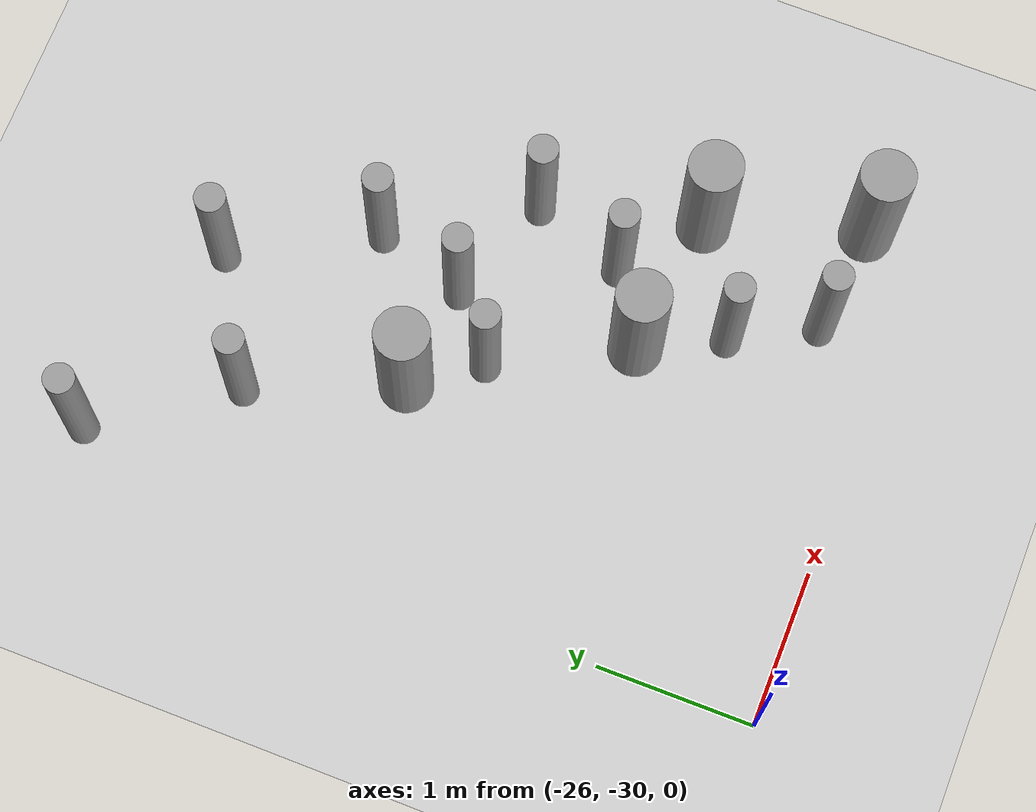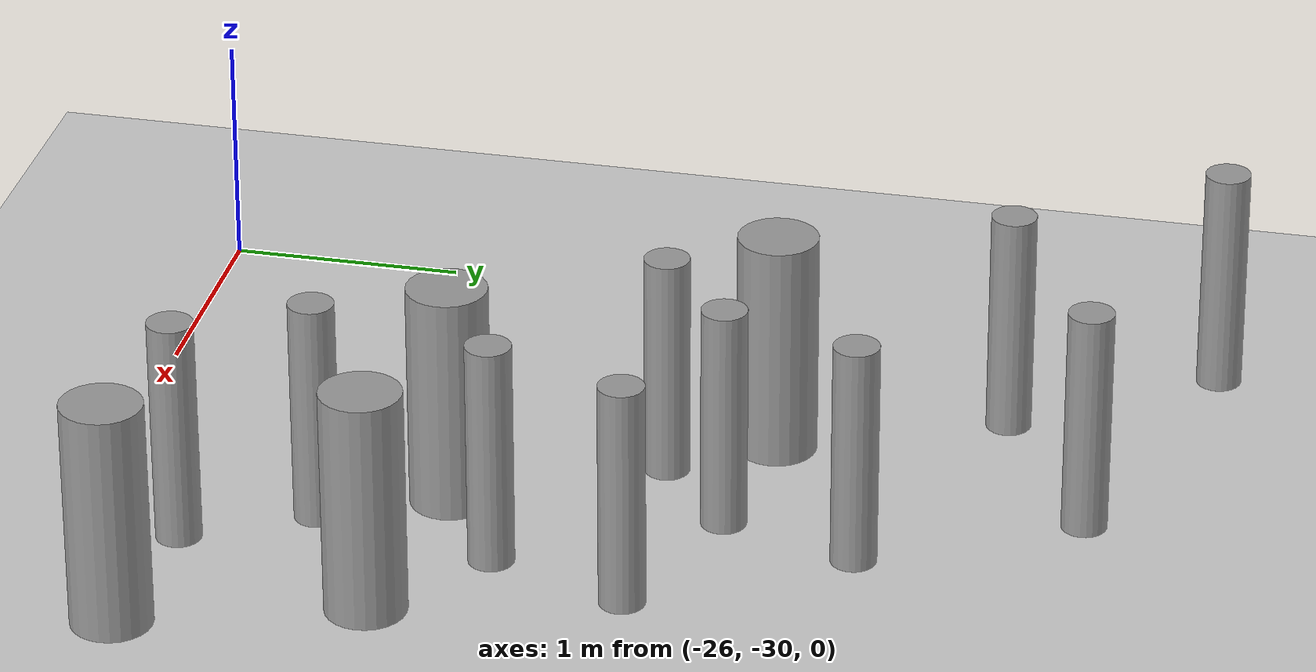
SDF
<sdf version="1.6">
 <world name="default">
  <model name="ground_plane">
   <static>1</static>
   <link name="link">
    <collision name="collision">
     <geometry><plane><normal>0 0 1</normal><size>100 100</size></plane></geometry>
     <surface><friction><ode><mu>100</mu><mu2>50</mu2></ode></friction></surface>
    </collision>
    <visual name="visual">
     <cast_shadows>0</cast_shadows>
     <geometry><plane><normal>0 0 1</normal><size>100 100</size></plane></geometry>
     <material>
      <script><uri>file://media/materials/scripts/gazebo.material</uri><name>Gazebo/Grey</name></script>
     </material>
    </visual>
   </link>
  </model>
  <model name="cyl_wall_clone_clone_1_clone_1_clone_clone_4_clone">
   <link name="link_0">
    <pose>-2.73893 -0.366465 0 0 -0 0</pose>
    <inertial>
     <mass>0.0374993</mass>
     <inertia>
      <ixx>0.00321281</ixx>
      <ixy>0</ixy>
      <ixz>0</ixz>
      <iyy>0.00321281</iyy>
      <iyz>0</iyz>
      <izz>0.000175774</izz>
     </inertia>
    </inertial>
    <visual name="visual">
     <geometry><cylinder><radius>0.0968661</radius><length>1</length></cylinder></geometry>
     <material>
      <lighting>1</lighting>
      <script><uri>file://media/materials/scripts/gazebo.material</uri><name>Gazebo/Grey</name></script>
      <ambient>0.3 0.3 0.3 1</ambient>
      <diffuse>0.7 0.7 0.7 1</diffuse>
      <specular>0.01 0.01 0.01 1</specular>
      <emissive>0 0 0 1</emissive>
     </material>
    </visual>
    <collision name="collision">
     <geometry><cylinder><radius>0.096866</radius><length>1</length></cylinder></geometry>
     <surface>
      <friction>
       <ode><mu>1</mu><mu2>1</mu2><fdir1>0 0 0</fdir1><slip1>0</slip1><slip2>0</slip2></ode>
       <torsional>
        <coefficient>1</coefficient>
        <patch_radius>0</patch_radius>
        <surface_radius>0</surface_radius>
        <use_patch_radius>1</use_patch_radius>
        <ode><slip>0</slip></ode>
       </torsional>
      </friction>
      <bounce><restitution_coefficient>0</restitution_coefficient><threshold>1e+06</threshold></bounce>
      <contact>
       <collide_without_contact>0</collide_without_contact>
       <collide_without_contact_bitmask>1</collide_without_contact_bitmask>
       <collide_bitmask>1</collide_bitmask>
       <ode>
        <soft_cfm>0</soft_cfm>
        <soft_erp>0.2</soft_erp>
        <kp>1e+13</kp>
        <kd>1</kd>
        <max_vel>0.01</max_vel>
        <min_depth>0</min_depth>
       </ode>
       <bullet>
        <split_impulse>1</split_impulse>
        <split_impulse_penetration_threshold>-0.01</split_impulse_penetration_threshold>
        <soft_cfm>0</soft_cfm>
        <soft_erp>0.2</soft_erp>
        <kp>1e+13</kp>
        <kd>1</kd>
       </bullet>
      </contact>
     </surface>
    </collision>
   </link>
   <link name="link_0_clone">
    <pose>-1.73893 0.61877 0 0 -0 0</pose>
    <inertial>
     <mass>0.0374993</mass>
     <inertia>
      <ixx>0.00321281</ixx>
      <ixy>0</ixy>
      <ixz>0</ixz>
      <iyy>0.00321281</iyy>
      <iyz>0</iyz>
      <izz>0.000175774</izz>
     </inertia>
    </inertial>
    <visual name="visual">
     <geometry><cylinder><radius>0.0968661</radius><length>1</length></cylinder></geometry>
     <material>
      <lighting>1</lighting>
      <script><uri>file://media/materials/scripts/gazebo.material</uri><name>Gazebo/Grey</name></script>
      <ambient>0.3 0.3 0.3 1</ambient>
      <diffuse>0.7 0.7 0.7 1</diffuse>
      <specular>0.01 0.01 0.01 1</specular>
      <emissive>0 0 0 1</emissive>
      <shader type="pixel"/>
     </material>
    </visual>
    <collision name="collision">
     <geometry><cylinder><radius>0.096866</radius><length>1</length></cylinder></geometry>
     <surface>
      <friction>
       <ode><mu>1</mu><mu2>1</mu2><fdir1>0 0 0</fdir1><slip1>0</slip1><slip2>0</slip2></ode>
       <torsional>
        <coefficient>1</coefficient>
        <patch_radius>0</patch_radius>
        <surface_radius>0</surface_radius>
        <use_patch_radius>1</use_patch_radius>
        <ode><slip>0</slip></ode>
       </torsional>
      </friction>
      <bounce><restitution_coefficient>0</restitution_coefficient><threshold>1e+06</threshold></bounce>
      <contact>
       <collide_without_contact>0</collide_without_contact>
       <collide_without_contact_bitmask>1</collide_without_contact_bitmask>
       <collide_bitmask>1</collide_bitmask>
       <ode>
        <soft_cfm>0</soft_cfm>
        <soft_erp>0.2</soft_erp>
        <kp>1e+13</kp>
        <kd>1</kd>
        <max_vel>0.01</max_vel>
        <min_depth>0</min_depth>
       </ode>
       <bullet>
        <split_impulse>1</split_impulse>
        <split_impulse_penetration_threshold>-0.01</split_impulse_penetration_threshold>
        <soft_cfm>0</soft_cfm>
        <soft_erp>0.2</soft_erp>
        <kp>1e+13</kp>
        <kd>1</kd>
       </bullet>
      </contact>
     </surface>
    </collision>
   </link>
   <link name="link_0_clone_clone">
    <pose>-0.327073 0.143919 0 0 -0 0</pose>
    <inertial>
     <mass>0.0374993</mass>
     <inertia>
      <ixx>0.00321281</ixx>
      <ixy>0</ixy>
      <ixz>0</ixz>
      <iyy>0.00321281</iyy>
      <iyz>0</iyz>
      <izz>0.000175774</izz>
     </inertia>
    </inertial>
    <visual name="visual">
     <geometry><cylinder><radius>0.0968661</radius><length>1</length></cylinder></geometry>
     <material>
      <lighting>1</lighting>
      <script><uri>file://media/materials/scripts/gazebo.material</uri><name>Gazebo/Grey</name></script>
      <ambient>0.3 0.3 0.3 1</ambient>
      <diffuse>0.7 0.7 0.7 1</diffuse>
      <specular>0.01 0.01 0.01 1</specular>
      <emissive>0 0 0 1</emissive>
      <shader type="pixel"/>
     </material>
    </visual>
    <collision name="collision">
     <geometry><cylinder><radius>0.096866</radius><length>1</length></cylinder></geometry>
     <surface>
      <friction>
       <ode><mu>1</mu><mu2>1</mu2><fdir1>0 0 0</fdir1><slip1>0</slip1><slip2>0</slip2></ode>
       <torsional>
        <coefficient>1</coefficient>
        <patch_radius>0</patch_radius>
        <surface_radius>0</surface_radius>
        <use_patch_radius>1</use_patch_radius>
        <ode><slip>0</slip></ode>
       </torsional>
      </friction>
      <bounce><restitution_coefficient>0</restitution_coefficient><threshold>1e+06</threshold></bounce>
      <contact>
       <collide_without_contact>0</collide_without_contact>
       <collide_without_contact_bitmask>1</collide_without_contact_bitmask>
       <collide_bitmask>1</collide_bitmask>
       <ode>
        <soft_cfm>0</soft_cfm>
        <soft_erp>0.2</soft_erp>
        <kp>1e+13</kp>
        <kd>1</kd>
        <max_vel>0.01</max_vel>
        <min_depth>0</min_depth>
       </ode>
       <bullet>
        <split_impulse>1</split_impulse>
        <split_impulse_penetration_threshold>-0.01</split_impulse_penetration_threshold>
        <soft_cfm>0</soft_cfm>
        <soft_erp>0.2</soft_erp>
        <kp>1e+13</kp>
        <kd>1</kd>
       </bullet>
      </contact>
     </surface>
    </collision>
   </link>
   <link name="link_0_clone_clone_0">
    <pose>1.26107 -0.419359 0 0 -0 0</pose>
    <inertial>
     <mass>0.0374993</mass>
     <inertia>
      <ixx>0.00321281</ixx>
      <ixy>0</ixy>
      <ixz>0</ixz>
      <iyy>0.00321281</iyy>
      <iyz>0</iyz>
      <izz>0.000175774</izz>
     </inertia>
    </inertial>
    <visual name="visual">
     <geometry><cylinder><radius>0.0968661</radius><length>1</length></cylinder></geometry>
     <material>
      <lighting>1</lighting>
      <script><uri>file://media/materials/scripts/gazebo.material</uri><name>Gazebo/Grey</name></script>
      <ambient>0.3 0.3 0.3 1</ambient>
      <diffuse>0.7 0.7 0.7 1</diffuse>
      <specular>0.01 0.01 0.01 1</specular>
      <emissive>0 0 0 1</emissive>
      <shader type="pixel"/>
     </material>
    </visual>
    <collision name="collision">
     <geometry><cylinder><radius>0.096866</radius><length>1</length></cylinder></geometry>
     <surface>
      <friction>
       <ode><mu>1</mu><mu2>1</mu2><fdir1>0 0 0</fdir1><slip1>0</slip1><slip2>0</slip2></ode>
       <torsional>
        <coefficient>1</coefficient>
        <patch_radius>0</patch_radius>
        <surface_radius>0</surface_radius>
        <use_patch_radius>1</use_patch_radius>
        <ode><slip>0</slip></ode>
       </torsional>
      </friction>
      <bounce><restitution_coefficient>0</restitution_coefficient><threshold>1e+06</threshold></bounce>
      <contact>
       <collide_without_contact>0</collide_without_contact>
       <collide_without_contact_bitmask>1</collide_without_contact_bitmask>
       <collide_bitmask>1</collide_bitmask>
       <ode>
        <soft_cfm>0</soft_cfm>
        <soft_erp>0.2</soft_erp>
        <kp>1e+13</kp>
        <kd>1</kd>
        <max_vel>0.01</max_vel>
        <min_depth>0</min_depth>
       </ode>
       <bullet>
        <split_impulse>1</split_impulse>
        <split_impulse_penetration_threshold>-0.01</split_impulse_penetration_threshold>
        <soft_cfm>0</soft_cfm>
        <soft_erp>0.2</soft_erp>
        <kp>1e+13</kp>
        <kd>1</kd>
       </bullet>
      </contact>
     </surface>
    </collision>
   </link>
   <link name="link_0_clone_clone_1">
    <pose>-1.73893 -0.277168 0 0 -0 0</pose>
    <inertial>
     <mass>0.0374993</mass>
     <inertia>
      <ixx>0.00321281</ixx>
      <ixy>0</ixy>
      <ixz>0</ixz>
      <iyy>0.00321281</iyy>
      <iyz>0</iyz>
      <izz>0.000175774</izz>
     </inertia>
    </inertial>
    <visual name="visual">
     <geometry><cylinder><radius>0.0968661</radius><length>1</length></cylinder></geometry>
     <material>
      <lighting>1</lighting>
      <script><uri>file://media/materials/scripts/gazebo.material</uri><name>Gazebo/Grey</name></script>
      <ambient>0.3 0.3 0.3 1</ambient>
      <diffuse>0.7 0.7 0.7 1</diffuse>
      <specular>0.01 0.01 0.01 1</specular>
      <emissive>0 0 0 1</emissive>
      <shader type="pixel"/>
     </material>
    </visual>
    <collision name="collision">
     <geometry><cylinder><radius>0.096866</radius><length>1</length></cylinder></geometry>
     <surface>
      <friction>
       <ode><mu>1</mu><mu2>1</mu2><fdir1>0 0 0</fdir1><slip1>0</slip1><slip2>0</slip2></ode>
       <torsional>
        <coefficient>1</coefficient>
        <patch_radius>0</patch_radius>
        <surface_radius>0</surface_radius>
        <use_patch_radius>1</use_patch_radius>
        <ode><slip>0</slip></ode>
       </torsional>
      </friction>
      <bounce><restitution_coefficient>0</restitution_coefficient><threshold>1e+06</threshold></bounce>
      <contact>
       <collide_without_contact>0</collide_without_contact>
       <collide_without_contact_bitmask>1</collide_without_contact_bitmask>
       <collide_bitmask>1</collide_bitmask>
       <ode>
        <soft_cfm>0</soft_cfm>
        <soft_erp>0.2</soft_erp>
        <kp>1e+13</kp>
        <kd>1</kd>
        <max_vel>0.01</max_vel>
        <min_depth>0</min_depth>
       </ode>
       <bullet>
        <split_impulse>1</split_impulse>
        <split_impulse_penetration_threshold>-0.01</split_impulse_penetration_threshold>
        <soft_cfm>0</soft_cfm>
        <soft_erp>0.2</soft_erp>
        <kp>1e+13</kp>
        <kd>1</kd>
       </bullet>
      </contact>
     </surface>
    </collision>
   </link>
   <link name="link_0_clone_clone_2">
    <pose>-0.738934 0.593961 0 0 -0 0</pose>
    <inertial>
     <mass>0.0374993</mass>
     <inertia>
      <ixx>0.00321281</ixx>
      <ixy>0</ixy>
      <ixz>0</ixz>
      <iyy>0.00321281</iyy>
      <iyz>0</iyz>
      <izz>0.000175774</izz>
     </inertia>
    </inertial>
    <visual name="visual">
     <geometry><cylinder><radius>0.0968661</radius><length>1</length></cylinder></geometry>
     <material>
      <lighting>1</lighting>
      <script><uri>file://media/materials/scripts/gazebo.material</uri><name>Gazebo/Grey</name></script>
      <ambient>0.3 0.3 0.3 1</ambient>
      <diffuse>0.7 0.7 0.7 1</diffuse>
      <specular>0.01 0.01 0.01 1</specular>
      <emissive>0 0 0 1</emissive>
      <shader type="pixel"/>
     </material>
    </visual>
    <collision name="collision">
     <geometry><cylinder><radius>0.096866</radius><length>1</length></cylinder></geometry>
     <surface>
      <friction>
       <ode><mu>1</mu><mu2>1</mu2><fdir1>0 0 0</fdir1><slip1>0</slip1><slip2>0</slip2></ode>
       <torsional>
        <coefficient>1</coefficient>
        <patch_radius>0</patch_radius>
        <surface_radius>0</surface_radius>
        <use_patch_radius>1</use_patch_radius>
        <ode><slip>0</slip></ode>
       </torsional>
      </friction>
      <bounce><restitution_coefficient>0</restitution_coefficient><threshold>1e+06</threshold></bounce>
      <contact>
       <collide_without_contact>0</collide_without_contact>
       <collide_without_contact_bitmask>1</collide_without_contact_bitmask>
       <collide_bitmask>1</collide_bitmask>
       <ode>
        <soft_cfm>0</soft_cfm>
        <soft_erp>0.2</soft_erp>
        <kp>1e+13</kp>
        <kd>1</kd>
        <max_vel>0.01</max_vel>
        <min_depth>0</min_depth>
       </ode>
       <bullet>
        <split_impulse>1</split_impulse>
        <split_impulse_penetration_threshold>-0.01</split_impulse_penetration_threshold>
        <soft_cfm>0</soft_cfm>
        <soft_erp>0.2</soft_erp>
        <kp>1e+13</kp>
        <kd>1</kd>
       </bullet>
      </contact>
     </surface>
    </collision>
   </link>
   <link name="link_0_clone_clone_3">
    <pose>0.261066 0.624849 0 0 -0 0</pose>
    <inertial>
     <mass>0.0374993</mass>
     <inertia>
      <ixx>0.00321281</ixx>
      <ixy>0</ixy>
      <ixz>0</ixz>
      <iyy>0.00321281</iyy>
      <iyz>0</iyz>
      <izz>0.000175774</izz>
     </inertia>
    </inertial>
    <visual name="visual">
     <geometry><cylinder><radius>0.0968661</radius><length>1</length></cylinder></geometry>
     <material>
      <lighting>1</lighting>
      <script><uri>file://media/materials/scripts/gazebo.material</uri><name>Gazebo/Grey</name></script>
      <ambient>0.3 0.3 0.3 1</ambient>
      <diffuse>0.7 0.7 0.7 1</diffuse>
      <specular>0.01 0.01 0.01 1</specular>
      <emissive>0 0 0 1</emissive>
      <shader type="pixel"/>
     </material>
    </visual>
    <collision name="collision">
     <geometry><cylinder><radius>0.096866</radius><length>1</length></cylinder></geometry>
     <surface>
      <friction>
       <ode><mu>1</mu><mu2>1</mu2><fdir1>0 0 0</fdir1><slip1>0</slip1><slip2>0</slip2></ode>
       <torsional>
        <coefficient>1</coefficient>
        <patch_radius>0</patch_radius>
        <surface_radius>0</surface_radius>
        <use_patch_radius>1</use_patch_radius>
        <ode><slip>0</slip></ode>
       </torsional>
      </friction>
      <bounce><restitution_coefficient>0</restitution_coefficient><threshold>1e+06</threshold></bounce>
      <contact>
       <collide_without_contact>0</collide_without_contact>
       <collide_without_contact_bitmask>1</collide_without_contact_bitmask>
       <collide_bitmask>1</collide_bitmask>
       <ode>
        <soft_cfm>0</soft_cfm>
        <soft_erp>0.2</soft_erp>
        <kp>1e+13</kp>
        <kd>1</kd>
        <max_vel>0.01</max_vel>
        <min_depth>0</min_depth>
       </ode>
       <bullet>
        <split_impulse>1</split_impulse>
        <split_impulse_penetration_threshold>-0.01</split_impulse_penetration_threshold>
        <soft_cfm>0</soft_cfm>
        <soft_erp>0.2</soft_erp>
        <kp>1e+13</kp>
        <kd>1</kd>
       </bullet>
      </contact>
     </surface>
    </collision>
   </link>
   <link name="link_0_clone_clone_4">
    <pose>-0.239049 -0.353105 0 0 -0 0</pose>
    <inertial>
     <mass>0.0374993</mass>
     <inertia>
      <ixx>0.00321281</ixx>
      <ixy>0</ixy>
      <ixz>0</ixz>
      <iyy>0.00321281</iyy>
      <iyz>0</iyz>
      <izz>0.000175774</izz>
     </inertia>
    </inertial>
    <visual name="visual">
     <geometry><cylinder><radius>0.0968661</radius><length>1</length></cylinder></geometry>
     <material>
      <lighting>1</lighting>
      <script><uri>file://media/materials/scripts/gazebo.material</uri><name>Gazebo/Grey</name></script>
      <ambient>0.3 0.3 0.3 1</ambient>
      <diffuse>0.7 0.7 0.7 1</diffuse>
      <specular>0.01 0.01 0.01 1</specular>
      <emissive>0 0 0 1</emissive>
      <shader type="pixel"/>
     </material>
    </visual>
    <collision name="collision">
     <geometry><cylinder><radius>0.096866</radius><length>1</length></cylinder></geometry>
     <surface>
      <friction>
       <ode><mu>1</mu><mu2>1</mu2><fdir1>0 0 0</fdir1><slip1>0</slip1><slip2>0</slip2></ode>
       <torsional>
        <coefficient>1</coefficient>
        <patch_radius>0</patch_radius>
        <surface_radius>0</surface_radius>
        <use_patch_radius>1</use_patch_radius>
        <ode><slip>0</slip></ode>
       </torsional>
      </friction>
      <bounce><restitution_coefficient>0</restitution_coefficient><threshold>1e+06</threshold></bounce>
      <contact>
       <collide_without_contact>0</collide_without_contact>
       <collide_without_contact_bitmask>1</collide_without_contact_bitmask>
       <collide_bitmask>1</collide_bitmask>
       <ode>
        <soft_cfm>0</soft_cfm>
        <soft_erp>0.2</soft_erp>
        <kp>1e+13</kp>
        <kd>1</kd>
        <max_vel>0.01</max_vel>
        <min_depth>0</min_depth>
       </ode>
       <bullet>
        <split_impulse>1</split_impulse>
        <split_impulse_penetration_threshold>-0.01</split_impulse_penetration_threshold>
        <soft_cfm>0</soft_cfm>
        <soft_erp>0.2</soft_erp>
        <kp>1e+13</kp>
        <kd>1</kd>
       </bullet>
      </contact>
     </surface>
    </collision>
   </link>
   <link name="link_0_clone_clone_5">
    <pose>0.672792 0.143919 0 0 -0 0</pose>
    <inertial>
     <mass>0.0374993</mass>
     <inertia>
      <ixx>0.00321281</ixx>
      <ixy>0</ixy>
      <ixz>0</ixz>
      <iyy>0.00321281</iyy>
      <iyz>0</iyz>
      <izz>0.000175774</izz>
     </inertia>
    </inertial>
    <visual name="visual">
     <geometry><cylinder><radius>0.0968661</radius><length>1</length></cylinder></geometry>
     <material>
      <lighting>1</lighting>
      <script><uri>file://media/materials/scripts/gazebo.material</uri><name>Gazebo/Grey</name></script>
      <ambient>0.3 0.3 0.3 1</ambient>
      <diffuse>0.7 0.7 0.7 1</diffuse>
      <specular>0.01 0.01 0.01 1</specular>
      <emissive>0 0 0 1</emissive>
      <shader type="pixel"/>
     </material>
    </visual>
    <collision name="collision">
     <geometry><cylinder><radius>0.096866</radius><length>1</length></cylinder></geometry>
     <surface>
      <friction>
       <ode><mu>1</mu><mu2>1</mu2><fdir1>0 0 0</fdir1><slip1>0</slip1><slip2>0</slip2></ode>
       <torsional>
        <coefficient>1</coefficient>
        <patch_radius>0</patch_radius>
        <surface_radius>0</surface_radius>
        <use_patch_radius>1</use_patch_radius>
        <ode><slip>0</slip></ode>
       </torsional>
      </friction>
      <bounce><restitution_coefficient>0</restitution_coefficient><threshold>1e+06</threshold></bounce>
      <contact>
       <collide_without_contact>0</collide_without_contact>
       <collide_without_contact_bitmask>1</collide_without_contact_bitmask>
       <collide_bitmask>1</collide_bitmask>
       <ode>
        <soft_cfm>0</soft_cfm>
        <soft_erp>0.2</soft_erp>
        <kp>1e+13</kp>
        <kd>1</kd>
        <max_vel>0.01</max_vel>
        <min_depth>0</min_depth>
       </ode>
       <bullet>
        <split_impulse>1</split_impulse>
        <split_impulse_penetration_threshold>-0.01</split_impulse_penetration_threshold>
        <soft_cfm>0</soft_cfm>
        <soft_erp>0.2</soft_erp>
        <kp>1e+13</kp>
        <kd>1</kd>
       </bullet>
      </contact>
     </surface>
    </collision>
   </link>
   <link name="link_0_clone_clone_6">
    <pose>1.84596 -0.433423 0 0 -0 0</pose>
    <inertial>
     <mass>0.0374993</mass>
     <inertia>
      <ixx>0.00321281</ixx>
      <ixy>0</ixy>
      <ixz>0</ixz>
      <iyy>0.00321281</iyy>
      <iyz>0</iyz>
      <izz>0.000175774</izz>
     </inertia>
    </inertial>
    <visual name="visual">
     <geometry><cylinder><radius>0.0968661</radius><length>1</length></cylinder></geometry>
     <material>
      <lighting>1</lighting>
      <script><uri>file://media/materials/scripts/gazebo.material</uri><name>Gazebo/Grey</name></script>
      <ambient>0.3 0.3 0.3 1</ambient>
      <diffuse>0.7 0.7 0.7 1</diffuse>
      <specular>0.01 0.01 0.01 1</specular>
      <emissive>0 0 0 1</emissive>
      <shader type="pixel"/>
     </material>
    </visual>
    <collision name="collision">
     <geometry><cylinder><radius>0.096866</radius><length>1</length></cylinder></geometry>
     <surface>
      <friction>
       <ode><mu>1</mu><mu2>1</mu2><fdir1>0 0 0</fdir1><slip1>0</slip1><slip2>0</slip2></ode>
       <torsional>
        <coefficient>1</coefficient>
        <patch_radius>0</patch_radius>
        <surface_radius>0</surface_radius>
        <use_patch_radius>1</use_patch_radius>
        <ode><slip>0</slip></ode>
       </torsional>
      </friction>
      <bounce><restitution_coefficient>0</restitution_coefficient><threshold>1e+06</threshold></bounce>
      <contact>
       <collide_without_contact>0</collide_without_contact>
       <collide_without_contact_bitmask>1</collide_without_contact_bitmask>
       <collide_bitmask>1</collide_bitmask>
       <ode>
        <soft_cfm>0</soft_cfm>
        <soft_erp>0.2</soft_erp>
        <kp>1e+13</kp>
        <kd>1</kd>
        <max_vel>0.01</max_vel>
        <min_depth>0</min_depth>
       </ode>
       <bullet>
        <split_impulse>1</split_impulse>
        <split_impulse_penetration_threshold>-0.01</split_impulse_penetration_threshold>
        <soft_cfm>0</soft_cfm>
        <soft_erp>0.2</soft_erp>
        <kp>1e+13</kp>
        <kd>1</kd>
       </bullet>
      </contact>
     </surface>
    </collision>
   </link>
   <link name="link_1">
    <pose>-0.738934 -0.397931 0 0 -0 0</pose>
    <inertial>
     <mass>0.117398</mass>
     <inertia>
      <ixx>0.0106445</ixx>
      <ixy>0</ixy>
      <ixz>0</ixz>
      <iyy>0.0106445</iyy>
      <iyz>0</iyz>
      <izz>0.00172278</izz>
     </inertia>
    </inertial>
    <visual name="visual">
     <geometry><cylinder><radius>0.171317</radius><length>1</length></cylinder></geometry>
     <material>
      <lighting>1</lighting>
      <script><uri>file://media/materials/scripts/gazebo.material</uri><name>Gazebo/Grey</name></script>
      <ambient>0.3 0.3 0.3 1</ambient>
      <diffuse>0.7 0.7 0.7 1</diffuse>
      <specular>0.01 0.01 0.01 1</specular>
      <emissive>0 0 0 1</emissive>
     </material>
    </visual>
    <collision name="collision">
     <geometry><cylinder><radius>0.171317</radius><length>1</length></cylinder></geometry>
     <surface>
      <friction>
       <ode><mu>1</mu><mu2>1</mu2><fdir1>0 0 0</fdir1><slip1>0</slip1><slip2>0</slip2></ode>
       <torsional>
        <coefficient>1</coefficient>
        <patch_radius>0</patch_radius>
        <surface_radius>0</surface_radius>
        <use_patch_radius>1</use_patch_radius>
        <ode><slip>0</slip></ode>
       </torsional>
      </friction>
      <bounce><restitution_coefficient>0</restitution_coefficient><threshold>1e+06</threshold></bounce>
      <contact>
       <collide_without_contact>0</collide_without_contact>
       <collide_without_contact_bitmask>1</collide_without_contact_bitmask>
       <collide_bitmask>1</collide_bitmask>
       <ode>
        <soft_cfm>0</soft_cfm>
        <soft_erp>0.2</soft_erp>
        <kp>1e+13</kp>
        <kd>1</kd>
        <max_vel>0.01</max_vel>
        <min_depth>0</min_depth>
       </ode>
       <bullet>
        <split_impulse>1</split_impulse>
        <split_impulse_penetration_threshold>-0.01</split_impulse_penetration_threshold>
        <soft_cfm>0</soft_cfm>
        <soft_erp>0.2</soft_erp>
        <kp>1e+13</kp>
        <kd>1</kd>
       </bullet>
      </contact>
     </surface>
    </collision>
   </link>
   <link name="link_1_clone">
    <pose>0.697784 -0.380861 0 0 -0 0</pose>
    <inertial>
     <mass>0.117398</mass>
     <inertia>
      <ixx>0.0106445</ixx>
      <ixy>0</ixy>
      <ixz>0</ixz>
      <iyy>0.0106445</iyy>
      <iyz>0</iyz>
      <izz>0.00172278</izz>
     </inertia>
    </inertial>
    <visual name="visual">
     <geometry><cylinder><radius>0.171317</radius><length>1</length></cylinder></geometry>
     <material>
      <lighting>1</lighting>
      <script><uri>file://media/materials/scripts/gazebo.material</uri><name>Gazebo/Grey</name></script>
      <ambient>0.3 0.3 0.3 1</ambient>
      <diffuse>0.7 0.7 0.7 1</diffuse>
      <specular>0.01 0.01 0.01 1</specular>
      <emissive>0 0 0 1</emissive>
      <shader type="pixel"/>
     </material>
    </visual>
    <collision name="collision">
     <geometry><cylinder><radius>0.171317</radius><length>1</length></cylinder></geometry>
     <surface>
      <friction>
       <ode><mu>1</mu><mu2>1</mu2><fdir1>0 0 0</fdir1><slip1>0</slip1><slip2>0</slip2></ode>
       <torsional>
        <coefficient>1</coefficient>
        <patch_radius>0</patch_radius>
        <surface_radius>0</surface_radius>
        <use_patch_radius>1</use_patch_radius>
        <ode><slip>0</slip></ode>
       </torsional>
      </friction>
      <bounce><restitution_coefficient>0</restitution_coefficient><threshold>1e+06</threshold></bounce>
      <contact>
       <collide_without_contact>0</collide_without_contact>
       <collide_without_contact_bitmask>1</collide_without_contact_bitmask>
       <collide_bitmask>1</collide_bitmask>
       <ode>
        <soft_cfm>0</soft_cfm>
        <soft_erp>0.2</soft_erp>
        <kp>1e+13</kp>
        <kd>1</kd>
        <max_vel>0.01</max_vel>
        <min_depth>0</min_depth>
       </ode>
       <bullet>
        <split_impulse>1</split_impulse>
        <split_impulse_penetration_threshold>-0.01</split_impulse_penetration_threshold>
        <soft_cfm>0</soft_cfm>
        <soft_erp>0.2</soft_erp>
        <kp>1e+13</kp>
        <kd>1</kd>
       </bullet>
      </contact>
     </surface>
    </collision>
   </link>
   <link name="link_1_clone_0">
    <pose>1.26107 0.358974 0 0 -0 0</pose>
    <inertial>
     <mass>0.117398</mass>
     <inertia>
      <ixx>0.0106445</ixx>
      <ixy>0</ixy>
      <ixz>0</ixz>
      <iyy>0.0106445</iyy>
      <iyz>0</iyz>
      <izz>0.00172278</izz>
     </inertia>
    </inertial>
    <visual name="visual">
     <geometry><cylinder><radius>0.171317</radius><length>1</length></cylinder></geometry>
     <material>
      <lighting>1</lighting>
      <script><uri>file://media/materials/scripts/gazebo.material</uri><name>Gazebo/Grey</name></script>
      <ambient>0.3 0.3 0.3 1</ambient>
      <diffuse>0.7 0.7 0.7 1</diffuse>
      <specular>0.01 0.01 0.01 1</specular>
      <emissive>0 0 0 1</emissive>
      <shader type="pixel"/>
     </material>
    </visual>
    <collision name="collision">
     <geometry><cylinder><radius>0.171317</radius><length>1</length></cylinder></geometry>
     <surface>
      <friction>
       <ode><mu>1</mu><mu2>1</mu2><fdir1>0 0 0</fdir1><slip1>0</slip1><slip2>0</slip2></ode>
       <torsional>
        <coefficient>1</coefficient>
        <patch_radius>0</patch_radius>
        <surface_radius>0</surface_radius>
        <use_patch_radius>1</use_patch_radius>
        <ode><slip>0</slip></ode>
       </torsional>
      </friction>
      <bounce><restitution_coefficient>0</restitution_coefficient><threshold>1e+06</threshold></bounce>
      <contact>
       <collide_without_contact>0</collide_without_contact>
       <collide_without_contact_bitmask>1</collide_without_contact_bitmask>
       <collide_bitmask>1</collide_bitmask>
       <ode>
        <soft_cfm>0</soft_cfm>
        <soft_erp>0.2</soft_erp>
        <kp>1e+13</kp>
        <kd>1</kd>
        <max_vel>0.01</max_vel>
        <min_depth>0</min_depth>
       </ode>
       <bullet>
        <split_impulse>1</split_impulse>
        <split_impulse_penetration_threshold>-0.01</split_impulse_penetration_threshold>
        <soft_cfm>0</soft_cfm>
        <soft_erp>0.2</soft_erp>
        <kp>1e+13</kp>
        <kd>1</kd>
       </bullet>
      </contact>
     </surface>
    </collision>
   </link>
   <link name="link_1_clone_1">
    <pose>2.26107 0.143919 0 0 -0 0</pose>
    <inertial>
     <mass>0.117398</mass>
     <inertia>
      <ixx>0.0106445</ixx>
      <ixy>0</ixy>
      <ixz>0</ixz>
      <iyy>0.0106445</iyy>
      <iyz>0</iyz>
      <izz>0.00172278</izz>
     </inertia>
    </inertial>
    <visual name="visual">
     <geometry><cylinder><radius>0.171317</radius><length>1</length></cylinder></geometry>
     <material>
      <lighting>1</lighting>
      <script><uri>file://media/materials/scripts/gazebo.material</uri><name>Gazebo/Grey</name></script>
      <ambient>0.3 0.3 0.3 1</ambient>
      <diffuse>0.7 0.7 0.7 1</diffuse>
      <specular>0.01 0.01 0.01 1</specular>
      <emissive>0 0 0 1</emissive>
      <shader type="pixel"/>
     </material>
    </visual>
    <collision name="collision">
     <geometry><cylinder><radius>0.171317</radius><length>1</length></cylinder></geometry>
     <surface>
      <friction>
       <ode><mu>1</mu><mu2>1</mu2><fdir1>0 0 0</fdir1><slip1>0</slip1><slip2>0</slip2></ode>
       <torsional>
        <coefficient>1</coefficient>
        <patch_radius>0</patch_radius>
        <surface_radius>0</surface_radius>
        <use_patch_radius>1</use_patch_radius>
        <ode><slip>0</slip></ode>
       </torsional>
      </friction>
      <bounce><restitution_coefficient>0</restitution_coefficient><threshold>1e+06</threshold></bounce>
      <contact>
       <collide_without_contact>0</collide_without_contact>
       <collide_without_contact_bitmask>1</collide_without_contact_bitmask>
       <collide_bitmask>1</collide_bitmask>
       <ode>
        <soft_cfm>0</soft_cfm>
        <soft_erp>0.2</soft_erp>
        <kp>1e+13</kp>
        <kd>1</kd>
        <max_vel>0.01</max_vel>
        <min_depth>0</min_depth>
       </ode>
       <bullet>
        <split_impulse>1</split_impulse>
        <split_impulse_penetration_threshold>-0.01</split_impulse_penetration_threshold>
        <soft_cfm>0</soft_cfm>
        <soft_erp>0.2</soft_erp>
        <kp>1e+13</kp>
        <kd>1</kd>
       </bullet>
      </contact>
     </surface>
    </collision>
   </link>
   <static>1</static>
   <pose>-24.0619 -27.7289 0.5 0 0 -1.04703</pose>
  </model>
 </world>
</sdf>
